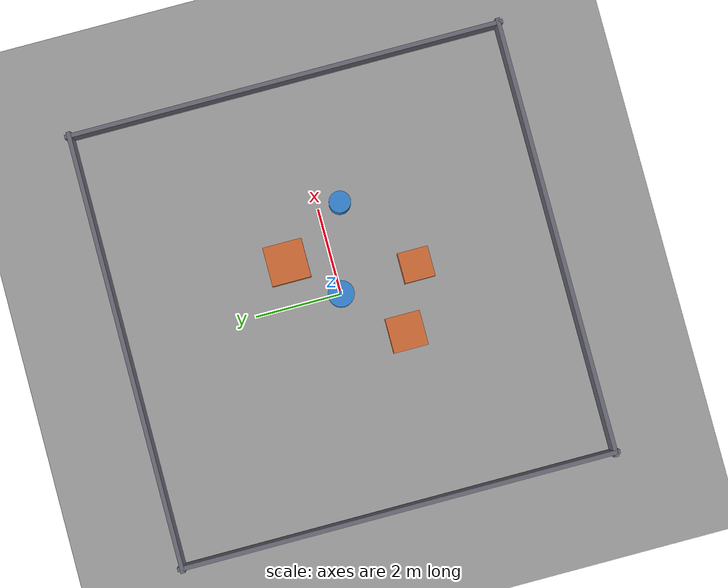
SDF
<?xml version="1.0" ?>
<sdf version="1.10">
  <world name="obstacle_world">

    <physics name="1ms" type="ignored">
      <max_step_size>0.001</max_step_size>
      <real_time_factor>1.0</real_time_factor>
    </physics>

    <plugin filename="gz-sim-physics-system"
            name="gz::sim::systems::Physics"/>
    <plugin filename="gz-sim-user-commands-system"
            name="gz::sim::systems::UserCommands"/>
    <plugin filename="gz-sim-scene-broadcaster-system"
            name="gz::sim::systems::SceneBroadcaster"/>
    <plugin filename="gz-sim-sensors-system"
            name="gz::sim::systems::Sensors">
      <render_engine>ogre2</render_engine>
    </plugin>
    <plugin filename="gz-sim-imu-system"
            name="gz::sim::systems::Imu"/>
    <plugin filename="gz-sim-contact-system"
            name="gz::sim::systems::Contact"/>

    <scene>
      <ambient>0.4 0.4 0.4 1</ambient>
      <background>0.7 0.7 0.7 1</background>
      <shadows>false</shadows>
    </scene>

    <light type="directional" name="sun">
      <cast_shadows>false</cast_shadows>
      <pose>0 0 10 0 0 0</pose>
      <diffuse>0.8 0.8 0.8 1</diffuse>
      <specular>0.2 0.2 0.2 1</specular>
      <direction>-0.5 0.1 -0.9</direction>
    </light>

    <!-- ======================== Ground plane ======================== -->
    <model name="ground_plane">
      <static>true</static>
      <link name="link">
        <collision name="collision">
          <geometry>
            <plane>
              <normal>0 0 1</normal>
              <size>20 20</size>
            </plane>
          </geometry>
          <surface>
            <friction>
              <ode>
                <mu>1.5</mu>
                <mu2>1.5</mu2>
              </ode>
            </friction>
          </surface>
        </collision>
        <visual name="visual">
          <geometry>
            <plane>
              <normal>0 0 1</normal>
              <size>20 20</size>
            </plane>
          </geometry>
          <material>
            <ambient>0.5 0.5 0.5 1</ambient>
            <diffuse>0.6 0.6 0.6 1</diffuse>
            <specular>0.1 0.1 0.1 1</specular>
          </material>
        </visual>
      </link>
    </model>

    <!-- ===================== Perimeter walls ======================== -->
    <!-- 10 m x 10 m room: walls centred at +/-5 m, 0.1 m thick, 0.5 m tall. -->
    <model name="wall_north">
      <static>true</static>
      <pose>0 5 0.25 0 0 0</pose>
      <link name="link">
        <collision name="collision">
          <geometry><box><size>10.2 0.1 0.5</size></box></geometry>
        </collision>
        <visual name="visual">
          <geometry><box><size>10.2 0.1 0.5</size></box></geometry>
          <material>
            <ambient>0.3 0.3 0.35 1</ambient>
            <diffuse>0.4 0.4 0.45 1</diffuse>
          </material>
        </visual>
      </link>
    </model>

    <model name="wall_south">
      <static>true</static>
      <pose>0 -5 0.25 0 0 0</pose>
      <link name="link">
        <collision name="collision">
          <geometry><box><size>10.2 0.1 0.5</size></box></geometry>
        </collision>
        <visual name="visual">
          <geometry><box><size>10.2 0.1 0.5</size></box></geometry>
          <material>
            <ambient>0.3 0.3 0.35 1</ambient>
            <diffuse>0.4 0.4 0.45 1</diffuse>
          </material>
        </visual>
      </link>
    </model>

    <model name="wall_east">
      <static>true</static>
      <pose>5 0 0.25 0 0 0</pose>
      <link name="link">
        <collision name="collision">
          <geometry><box><size>0.1 10.2 0.5</size></box></geometry>
        </collision>
        <visual name="visual">
          <geometry><box><size>0.1 10.2 0.5</size></box></geometry>
          <material>
            <ambient>0.3 0.3 0.35 1</ambient>
            <diffuse>0.4 0.4 0.45 1</diffuse>
          </material>
        </visual>
      </link>
    </model>

    <model name="wall_west">
      <static>true</static>
      <pose>-5 0 0.25 0 0 0</pose>
      <link name="link">
        <collision name="collision">
          <geometry><box><size>0.1 10.2 0.5</size></box></geometry>
        </collision>
        <visual name="visual">
          <geometry><box><size>0.1 10.2 0.5</size></box></geometry>
          <material>
            <ambient>0.3 0.3 0.35 1</ambient>
            <diffuse>0.4 0.4 0.45 1</diffuse>
          </material>
        </visual>
      </link>
    </model>

    <!-- ===================== Interior obstacles ===================== -->
    <!-- Placed on / near the A(-3.5,-3.5) -> B(3.5,3.5) diagonal so the
         straight path is blocked and the planner must detour. -->
    <model name="box_1">
      <static>true</static>
      <pose>-1.2 -1.2 0.2 0 0 0</pose>
      <link name="link">
        <collision name="collision">
          <geometry><box><size>0.8 0.8 0.4</size></box></geometry>
        </collision>
        <visual name="visual">
          <geometry><box><size>0.8 0.8 0.4</size></box></geometry>
          <material>
            <ambient>0.7 0.3 0.2 1</ambient>
            <diffuse>0.8 0.4 0.2 1</diffuse>
          </material>
        </visual>
      </link>
    </model>

    <model name="box_2">
      <static>true</static>
      <pose>1.0 1.0 0.2 0 0 0</pose>
      <link name="link">
        <collision name="collision">
          <geometry><box><size>0.9 0.9 0.4</size></box></geometry>
        </collision>
        <visual name="visual">
          <geometry><box><size>0.9 0.9 0.4</size></box></geometry>
          <material>
            <ambient>0.7 0.3 0.2 1</ambient>
            <diffuse>0.8 0.4 0.2 1</diffuse>
          </material>
        </visual>
      </link>
    </model>

    <model name="box_3">
      <static>true</static>
      <pose>0.2 -1.8 0.2 0 0 0</pose>
      <link name="link">
        <collision name="collision">
          <geometry><box><size>0.7 0.7 0.4</size></box></geometry>
        </collision>
        <visual name="visual">
          <geometry><box><size>0.7 0.7 0.4</size></box></geometry>
          <material>
            <ambient>0.7 0.3 0.2 1</ambient>
            <diffuse>0.8 0.4 0.2 1</diffuse>
          </material>
        </visual>
      </link>
    </model>

    <model name="pillar_1">
      <static>true</static>
      <pose>0.0 0.0 0.25 0 0 0</pose>
      <link name="link">
        <collision name="collision">
          <geometry><cylinder><radius>0.3</radius><length>0.5</length></cylinder></geometry>
        </collision>
        <visual name="visual">
          <geometry><cylinder><radius>0.3</radius><length>0.5</length></cylinder></geometry>
          <material>
            <ambient>0.2 0.4 0.7 1</ambient>
            <diffuse>0.2 0.5 0.8 1</diffuse>
          </material>
        </visual>
      </link>
    </model>

    <model name="pillar_2">
      <static>true</static>
      <pose>2.0 -0.5 0.25 0 0 0</pose>
      <link name="link">
        <collision name="collision">
          <geometry><cylinder><radius>0.25</radius><length>0.5</length></cylinder></geometry>
        </collision>
        <visual name="visual">
          <geometry><cylinder><radius>0.25</radius><length>0.5</length></cylinder></geometry>
          <material>
            <ambient>0.2 0.4 0.7 1</ambient>
            <diffuse>0.2 0.5 0.8 1</diffuse>
          </material>
        </visual>
      </link>
    </model>

  </world>
</sdf>
